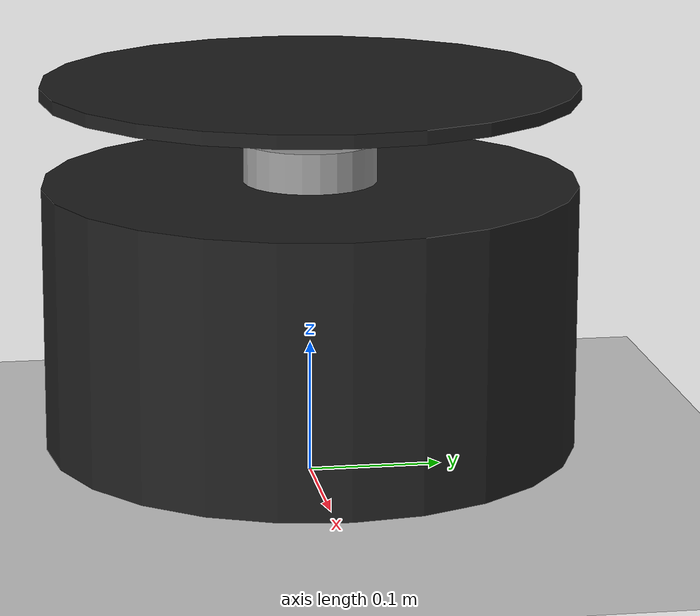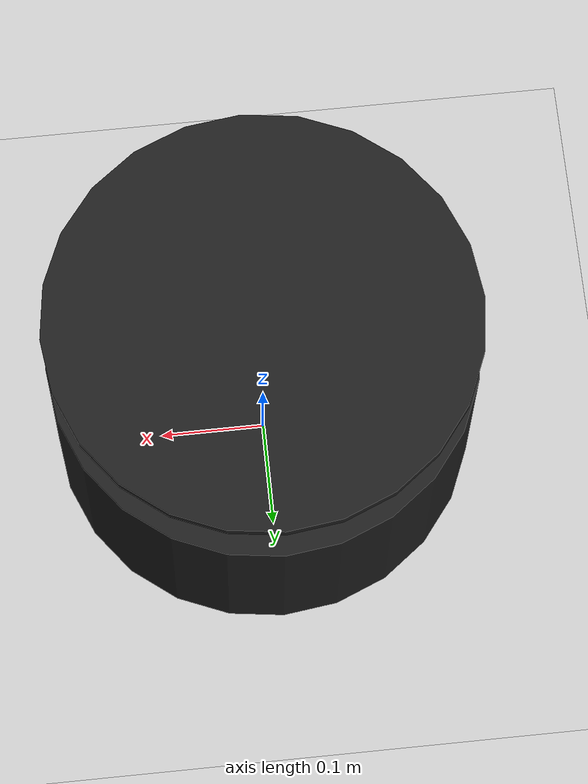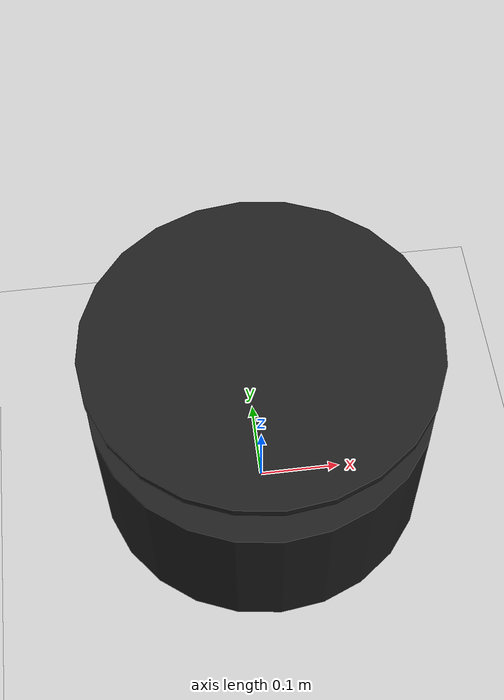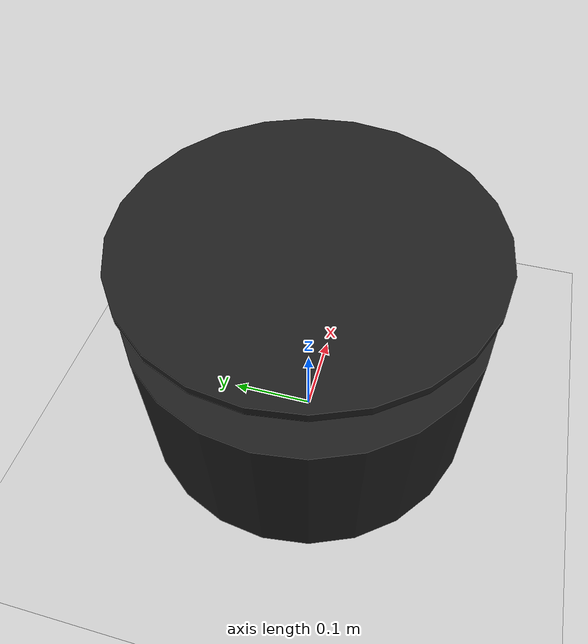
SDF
<sdf version="1.7">
 <world name="default">
  <light name="sun" type="directional">
   <pose>0 0 10 0 -0 0</pose>
   <diffuse>0.8 0.8 0.8 1</diffuse>
   <specular>0.2 0.2 0.2 1</specular>
   <attenuation>
    <range>1000</range>
    <constant>0.9</constant>
    <linear>0.01</linear>
    <quadratic>0.001</quadratic>
   </attenuation>
   <direction>-0.5 0.1 -0.9</direction>
   <spot><inner_angle>0</inner_angle><outer_angle>0</outer_angle><falloff>0</falloff></spot>
  </light>
  <model name="ground_plane">
   <static>1</static>
   <link name="link">
    <collision name="collision">
     <geometry><plane><normal>0 0 1</normal><size>100 100</size></plane></geometry>
     <surface><friction><ode><mu>100</mu><mu2>50</mu2></ode></friction></surface>
    </collision>
    <visual name="visual">
     <cast_shadows>0</cast_shadows>
     <geometry><plane><normal>0 0 1</normal><size>100 100</size></plane></geometry>
     <material>
      <script><uri>file://media/materials/scripts/gazebo.material</uri><name>Gazebo/Grey</name></script>
     </material>
    </visual>
   </link>
  </model>
  <gravity>0 0 -9.8</gravity>
  <magnetic_field>6e-06 2.3e-05 -4.2e-05</magnetic_field>
  <atmosphere type="adiabatic"/>
  <physics type="ode">
   <max_step_size>0.001</max_step_size>
   <real_time_factor>1</real_time_factor>
   <real_time_update_rate>1000</real_time_update_rate>
  </physics>
  <scene><ambient>0.4 0.4 0.4 1</ambient><background>0.7 0.7 0.7 1</background><shadows>1</shadows></scene>
  <audio><device>default</device></audio>
  <spherical_coordinates>
   <surface_model>EARTH_WGS84</surface_model>
   <latitude_deg>0</latitude_deg>
   <longitude_deg>0</longitude_deg>
   <elevation>0</elevation>
   <heading_deg>0</heading_deg>
  </spherical_coordinates>
  <model name="black_donut">
   <link name="base_footprint">
    <inertial>
     <pose>0 0 0.088333 0 -0 0</pose>
     <mass>0.9</mass>
     <inertia>
      <ixx>0.0100017</ixx>
      <ixy>0</ixy>
      <ixz>0</ixz>
      <iyy>0.0120017</iyy>
      <iyz>0</iyz>
      <izz>0.00999167</izz>
     </inertia>
    </inertial>
    <collision name="base_footprint_fixed_joint_lump__base_link_collision">
     <pose>0 0 0.075 0 -0 0</pose>
     <geometry><box><size>0.3 0.3 0.15</size></box></geometry>
    </collision>
    <collision name="base_footprint_fixed_joint_lump__caster_wheel_f_collision_1">
     <pose>0.1 0 0 0 -0 0</pose>
     <geometry><sphere><radius>0.05</radius></sphere></geometry>
     <surface><friction><ode><mu>0.001</mu><mu2>0.001</mu2></ode></friction></surface>
    </collision>
    <collision name="base_footprint_fixed_joint_lump__caster_wheel_b_collision_2">
     <pose>-0.1 0 0 0 -0 0</pose>
     <geometry><sphere><radius>0.05</radius></sphere></geometry>
     <surface><friction><ode><mu>0.001</mu><mu2>0.001</mu2></ode></friction></surface>
    </collision>
    <collision name="base_footprint_fixed_joint_lump__hat_link_collision_3">
     <pose>0 0 0.245 0 -0 0</pose>
     <geometry><box><size>0.3 0.3 0.15</size></box></geometry>
     <surface><friction><ode><mu>0.001</mu><mu2>0.001</mu2></ode></friction></surface>
    </collision>
    <collision name="base_footprint_fixed_joint_lump__laser_frame_collision_4">
     <pose>0 0 0.175 0 -0 0</pose>
     <geometry><cylinder><length>0.06</length><radius>0.05</radius></cylinder></geometry>
    </collision>
    <visual name="base_footprint_fixed_joint_lump__base_link_visual">
     <pose>0 0 0.075 0 -0 0</pose>
     <geometry><cylinder><length>0.2</length><radius>0.2</radius></cylinder></geometry>
     <material>
      <script><name>Gazebo/Black</name><uri>file://media/materials/scripts/gazebo.material</uri></script>
     </material>
    </visual>
    <visual name="base_footprint_fixed_joint_lump__caster_wheel_f_visual_1">
     <pose>0.1 0 0 0 -0 0</pose>
     <geometry><sphere><radius>0.05</radius></sphere></geometry>
     <material>
      <script><name>Gazebo/Black</name><uri>file://media/materials/scripts/gazebo.material</uri></script>
     </material>
    </visual>
    <visual name="base_footprint_fixed_joint_lump__caster_wheel_b_visual_2">
     <pose>-0.1 0 0 0 -0 0</pose>
     <geometry><sphere><radius>0.05</radius></sphere></geometry>
     <material>
      <script><name>Gazebo/Black</name><uri>file://media/materials/scripts/gazebo.material</uri></script>
     </material>
    </visual>
    <visual name="base_footprint_fixed_joint_lump__hat_link_visual_3">
     <pose>0 0 0.245 0 -0 0</pose>
     <geometry><cylinder><length>0.01</length><radius>0.2</radius></cylinder></geometry>
     <material>
      <script><name>Gazebo/Black</name><uri>file://media/materials/scripts/gazebo.material</uri></script>
     </material>
    </visual>
    <visual name="base_footprint_fixed_joint_lump__laser_frame_visual_4">
     <pose>0 0 0.175 0 -0 0</pose>
     <geometry><cylinder><length>0.06</length><radius>0.05</radius></cylinder></geometry>
     <material>
      <script><name>Gazebo/Grey</name><uri>file://media/materials/scripts/gazebo.material</uri></script>
     </material>
    </visual>
    <sensor name="laser" type="ray">
     <visualize>0</visualize>
     <update_rate>10</update_rate>
     <ray>
      <scan>
       <horizontal>
        <samples>360</samples>
        <min_angle>-3.14</min_angle>
        <max_angle>3.14</max_angle>
        <resolution>1</resolution>
       </horizontal>
       <vertical><samples>1</samples><min_angle>0</min_angle><max_angle>0</max_angle></vertical>
      </scan>
      <range><min>0.3</min><max>12</max></range>
     </ray>
     <plugin name="laser_controller" filename="libgazebo_ros_ray_sensor.so">
      <ros><argument>~/out:=scan</argument></ros>
      <output_type>sensor_msgs/LaserScan</output_type>
      <frame_name>laser_frame</frame_name>
     </plugin>
     <pose>0 0 0.175 0 -0 0</pose>
    </sensor>
   </link>
   <joint name="left_wheel_joint" type="revolute">
    <pose relative_to="base_footprint">0 0.1 0 -1.5708 0 0</pose>
    <parent>base_footprint</parent>
    <child>left_wheel</child>
    <axis>
     <xyz>0 0 1</xyz>
     <limit><lower>-1e+16</lower><upper>1e+16</upper></limit>
     <dynamics><spring_reference>0</spring_reference><spring_stiffness>0</spring_stiffness></dynamics>
    </axis>
   </joint>
   <link name="left_wheel">
    <pose relative_to="left_wheel_joint">0 0 0 0 -0 0</pose>
    <inertial>
     <mass>0.1</mass>
     <inertia>
      <ixx>7.58333e-05</ixx>
      <ixy>0</ixy>
      <ixz>0</ixz>
      <iyy>7.58333e-05</iyy>
      <iyz>0</iyz>
      <izz>0.000125</izz>
     </inertia>
    </inertial>
    <collision name="left_wheel_collision">
     <geometry><cylinder><length>0.04</length><radius>0.05</radius></cylinder></geometry>
    </collision>
    <visual name="left_wheel_visual">
     <geometry><cylinder><length>0.04</length><radius>0.05</radius></cylinder></geometry>
     <material>
      <script><name>Gazebo/Orange</name><uri>file://media/materials/scripts/gazebo.material</uri></script>
     </material>
    </visual>
   </link>
   <joint name="right_wheel_joint" type="revolute">
    <pose relative_to="base_footprint">0 -0.1 0 1.5708 -0 0</pose>
    <parent>base_footprint</parent>
    <child>right_wheel</child>
    <axis>
     <xyz>0 0 -1</xyz>
     <limit><lower>-1e+16</lower><upper>1e+16</upper></limit>
     <dynamics><spring_reference>0</spring_reference><spring_stiffness>0</spring_stiffness></dynamics>
    </axis>
   </joint>
   <link name="right_wheel">
    <pose relative_to="right_wheel_joint">0 0 0 0 -0 0</pose>
    <inertial>
     <mass>0.1</mass>
     <inertia>
      <ixx>7.58333e-05</ixx>
      <ixy>0</ixy>
      <ixz>0</ixz>
      <iyy>7.58333e-05</iyy>
      <iyz>0</iyz>
      <izz>0.000125</izz>
     </inertia>
    </inertial>
    <collision name="right_wheel_collision">
     <geometry><cylinder><length>0.04</length><radius>0.05</radius></cylinder></geometry>
    </collision>
    <visual name="right_wheel_visual">
     <geometry><cylinder><length>0.04</length><radius>0.05</radius></cylinder></geometry>
     <material>
      <script><name>Gazebo/Orange</name><uri>file://media/materials/scripts/gazebo.material</uri></script>
     </material>
    </visual>
   </link>
   <static>0</static>
   <plugin name="gazebo_ros2_control" filename="libgazebo_ros2_control.so">
    <parameters>/home/zyme/ros_ws/ayn/install/black_donut_description/share/black_donut_description/config/my_controllers.yaml</parameters>
   </plugin>
   <pose>1e-06 -0.0002 0.05 0 -0 6e-06</pose>
  </model>
 </world>
</sdf>
